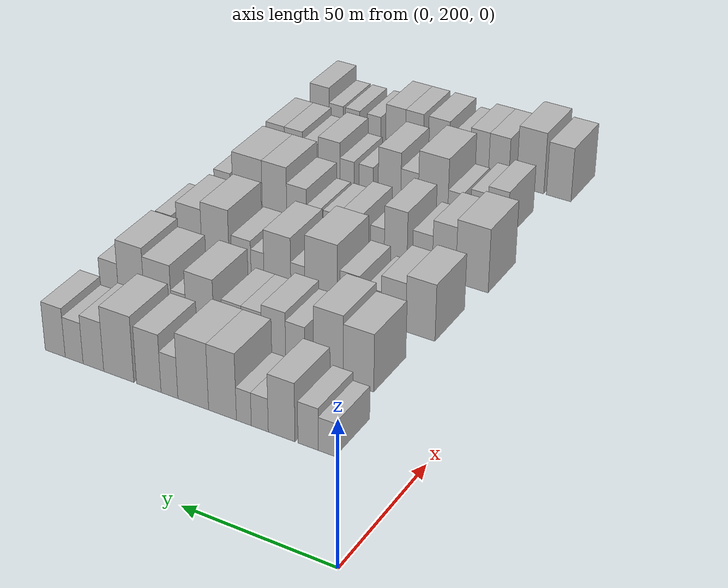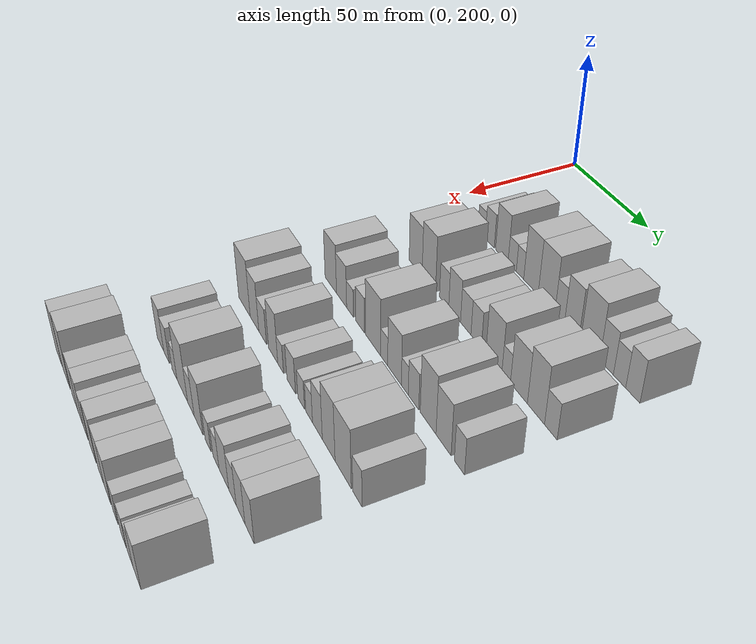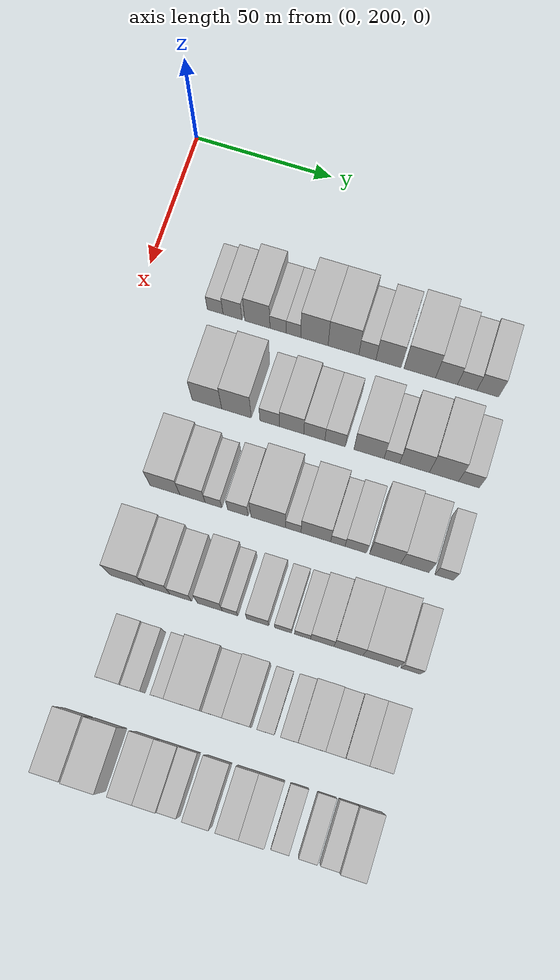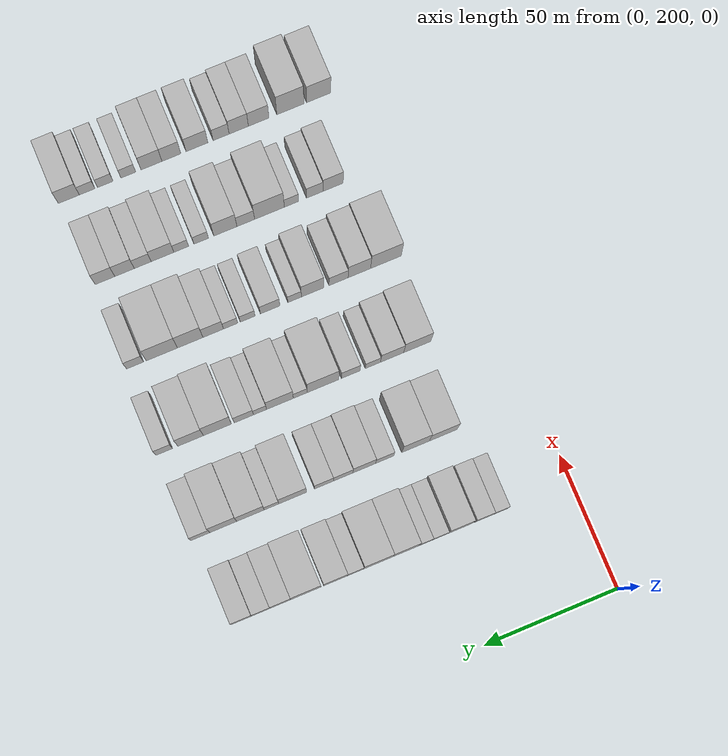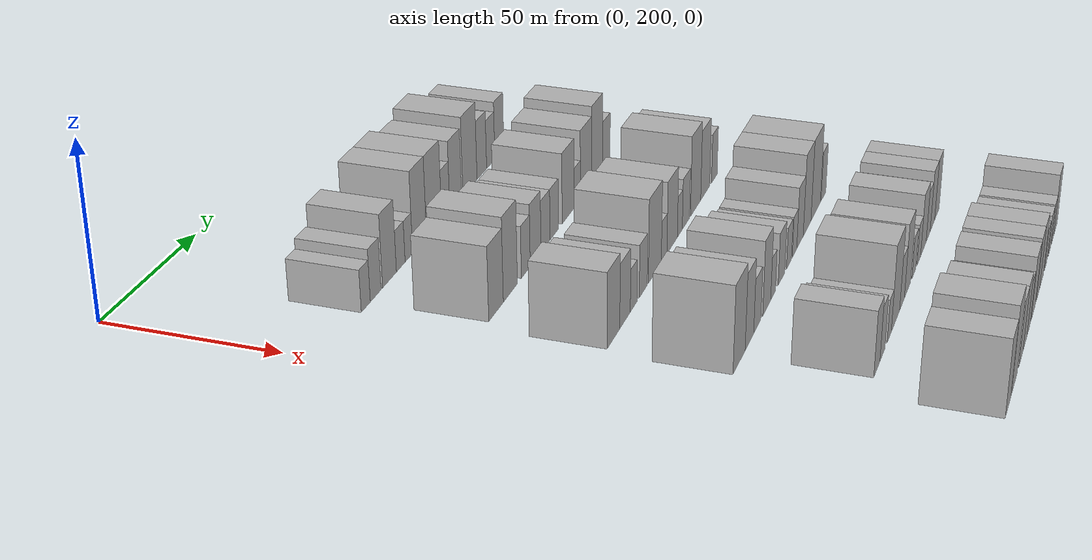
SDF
<sdf version="1.6">
 <world name="default">
  <model name="building_85">
   <static>1</static>
   <pose>50.0000 226.9476 0 0.000000 0.000000 0.000000</pose>
   <link name="link">
    <pose>0 0 6.00 0 0 0</pose>
    <collision name="collision"><geometry><box><size>20.0000 5.6434 12.0000</size></box></geometry></collision>
    <visual name="visual">
     <cast_shadows>0</cast_shadows>
     <geometry><box><size>20.0000 5.6434 12.0000</size></box></geometry>
     <material>
      <script>
       <uri>model://HANNAS_wall/materials/scripts</uri>
       <uri>model://HANNAS_wall/materials/textures</uri>
       <name>vrc/HANNAS_wall</name>
      </script>
     </material>
    </visual>
   </link>
  </model>
  <model name="building_86">
   <static>1</static>
   <pose>50.0000 233.1552 0 0.000000 0.000000 0.000000</pose>
   <link name="link">
    <pose>0 0 7.50 0 0 0</pose>
    <collision name="collision"><geometry><box><size>20.0000 6.7717 15.0000</size></box></geometry></collision>
    <visual name="visual">
     <cast_shadows>0</cast_shadows>
     <geometry><box><size>20.0000 6.7717 15.0000</size></box></geometry>
     <material>
      <script>
       <uri>model://HANNAS_wall/materials/scripts</uri>
       <uri>model://HANNAS_wall/materials/textures</uri>
       <name>vrc/HANNAS_wall</name>
      </script>
     </material>
    </visual>
   </link>
  </model>
  <model name="building_87">
   <static>1</static>
   <pose>50.0000 242.0589 0 0.000000 0.000000 0.000000</pose>
   <link name="link">
    <pose>0 0 10.50 0 0 0</pose>
    <collision name="collision"><geometry><box><size>20.0000 9.0357 21.0000</size></box></geometry></collision>
    <visual name="visual">
     <cast_shadows>0</cast_shadows>
     <geometry><box><size>20.0000 9.0357 21.0000</size></box></geometry>
     <material>
      <script>
       <uri>model://HANNAS_wall/materials/scripts</uri>
       <uri>model://HANNAS_wall/materials/textures</uri>
       <name>vrc/HANNAS_wall</name>
      </script>
     </material>
    </visual>
   </link>
  </model>
  <model name="building_88">
   <static>1</static>
   <pose>50.0000 249.4828 0 0.000000 0.000000 0.000000</pose>
   <link name="link">
    <pose>0 0 6.00 0 0 0</pose>
    <collision name="collision"><geometry><box><size>20.0000 5.8121 12.0000</size></box></geometry></collision>
    <visual name="visual">
     <cast_shadows>0</cast_shadows>
     <geometry><box><size>20.0000 5.8121 12.0000</size></box></geometry>
     <material>
      <script>
       <uri>model://HANNAS_wall/materials/scripts</uri>
       <uri>model://HANNAS_wall/materials/textures</uri>
       <name>vrc/HANNAS_wall</name>
      </script>
     </material>
    </visual>
   </link>
  </model>
  <model name="building_89">
   <static>1</static>
   <pose>50.0000 254.9602 0 0.000000 0.000000 0.000000</pose>
   <link name="link">
    <pose>0 0 6.00 0 0 0</pose>
    <collision name="collision"><geometry><box><size>20.0000 5.1426 12.0000</size></box></geometry></collision>
    <visual name="visual">
     <cast_shadows>0</cast_shadows>
     <geometry><box><size>20.0000 5.1426 12.0000</size></box></geometry>
     <material>
      <script>
       <uri>model://HANNAS_wall/materials/scripts</uri>
       <uri>model://HANNAS_wall/materials/textures</uri>
       <name>vrc/HANNAS_wall</name>
      </script>
     </material>
    </visual>
   </link>
  </model>
  <model name="building_90">
   <static>1</static>
   <pose>50.0000 262.3893 0 0.000000 0.000000 0.000000</pose>
   <link name="link">
    <pose>0 0 12.00 0 0 0</pose>
    <collision name="collision"><geometry><box><size>20.0000 9.7157 24.0000</size></box></geometry></collision>
    <visual name="visual">
     <cast_shadows>0</cast_shadows>
     <geometry><box><size>20.0000 9.7157 24.0000</size></box></geometry>
     <material>
      <script>
       <uri>model://HANNAS_wall/materials/scripts</uri>
       <uri>model://HANNAS_wall/materials/textures</uri>
       <name>vrc/HANNAS_wall</name>
      </script>
     </material>
    </visual>
   </link>
  </model>
  <model name="building_91">
   <static>1</static>
   <pose>50.0000 272.6896 0 0.000000 0.000000 0.000000</pose>
   <link name="link">
    <pose>0 0 12.00 0 0 0</pose>
    <collision name="collision"><geometry><box><size>20.0000 10.8849 24.0000</size></box></geometry></collision>
    <visual name="visual">
     <cast_shadows>0</cast_shadows>
     <geometry><box><size>20.0000 10.8849 24.0000</size></box></geometry>
     <material>
      <script>
       <uri>model://HANNAS_wall/materials/scripts</uri>
       <uri>model://HANNAS_wall/materials/textures</uri>
       <name>vrc/HANNAS_wall</name>
      </script>
     </material>
    </visual>
   </link>
  </model>
  <model name="building_92">
   <static>1</static>
   <pose>50.0000 281.1480 0 0.000000 0.000000 0.000000</pose>
   <link name="link">
    <pose>0 0 7.50 0 0 0</pose>
    <collision name="collision"><geometry><box><size>20.0000 6.0320 15.0000</size></box></geometry></collision>
    <visual name="visual">
     <cast_shadows>0</cast_shadows>
     <geometry><box><size>20.0000 6.0320 15.0000</size></box></geometry>
     <material>
      <script>
       <uri>model://HANNAS_wall/materials/scripts</uri>
       <uri>model://HANNAS_wall/materials/textures</uri>
       <name>vrc/HANNAS_wall</name>
      </script>
     </material>
    </visual>
   </link>
  </model>
  <model name="building_93">
   <static>1</static>
   <pose>50.0000 288.5988 0 0.000000 0.000000 0.000000</pose>
   <link name="link">
    <pose>0 0 10.50 0 0 0</pose>
    <collision name="collision"><geometry><box><size>20.0000 8.8696 21.0000</size></box></geometry></collision>
    <visual name="visual">
     <cast_shadows>0</cast_shadows>
     <geometry><box><size>20.0000 8.8696 21.0000</size></box></geometry>
     <material>
      <script>
       <uri>model://HANNAS_wall/materials/scripts</uri>
       <uri>model://HANNAS_wall/materials/textures</uri>
       <name>vrc/HANNAS_wall</name>
      </script>
     </material>
    </visual>
   </link>
  </model>
  <model name="building_94">
   <static>1</static>
   <pose>50.0000 299.5710 0 0.000000 0.000000 0.000000</pose>
   <link name="link">
    <pose>0 0 12.00 0 0 0</pose>
    <collision name="collision"><geometry><box><size>20.0000 11.0748 24.0000</size></box></geometry></collision>
    <visual name="visual">
     <cast_shadows>0</cast_shadows>
     <geometry><box><size>20.0000 11.0748 24.0000</size></box></geometry>
     <material>
      <script>
       <uri>model://HANNAS_wall/materials/scripts</uri>
       <uri>model://HANNAS_wall/materials/textures</uri>
       <name>vrc/HANNAS_wall</name>
      </script>
     </material>
    </visual>
   </link>
  </model>
  <model name="building_95">
   <static>1</static>
   <pose>50.0000 308.9610 0 0.000000 0.000000 0.000000</pose>
   <link name="link">
    <pose>0 0 9.00 0 0 0</pose>
    <collision name="collision"><geometry><box><size>20.0000 7.7052 18.0000</size></box></geometry></collision>
    <visual name="visual">
     <cast_shadows>0</cast_shadows>
     <geometry><box><size>20.0000 7.7052 18.0000</size></box></geometry>
     <material>
      <script>
       <uri>model://HANNAS_wall/materials/scripts</uri>
       <uri>model://HANNAS_wall/materials/textures</uri>
       <name>vrc/HANNAS_wall</name>
      </script>
     </material>
    </visual>
   </link>
  </model>
  <model name="building_96">
   <static>1</static>
   <pose>50.0000 316.1784 0 0.000000 0.000000 0.000000</pose>
   <link name="link">
    <pose>0 0 7.50 0 0 0</pose>
    <collision name="collision"><geometry><box><size>20.0000 6.7295 15.0000</size></box></geometry></collision>
    <visual name="visual">
     <cast_shadows>0</cast_shadows>
     <geometry><box><size>20.0000 6.7295 15.0000</size></box></geometry>
     <material>
      <script>
       <uri>model://HANNAS_wall/materials/scripts</uri>
       <uri>model://HANNAS_wall/materials/textures</uri>
       <name>vrc/HANNAS_wall</name>
      </script>
     </material>
    </visual>
   </link>
  </model>
  <model name="building_97">
   <static>1</static>
   <pose>50.0000 323.3371 0 0.000000 0.000000 0.000000</pose>
   <link name="link">
    <pose>0 0 9.00 0 0 0</pose>
    <collision name="collision"><geometry><box><size>20.0000 7.5880 18.0000</size></box></geometry></collision>
    <visual name="visual">
     <cast_shadows>0</cast_shadows>
     <geometry><box><size>20.0000 7.5880 18.0000</size></box></geometry>
     <material>
      <script>
       <uri>model://HANNAS_wall/materials/scripts</uri>
       <uri>model://HANNAS_wall/materials/textures</uri>
       <name>vrc/HANNAS_wall</name>
      </script>
     </material>
    </visual>
   </link>
  </model>
  <model name="building_214">
   <static>1</static>
   <pose>82.0000 234.6935 0 0.000000 0.000000 0.000000</pose>
   <link name="link">
    <pose>0 0 10.50 0 0 0</pose>
    <collision name="collision"><geometry><box><size>20.0000 10.4573 21.0000</size></box></geometry></collision>
    <visual name="visual">
     <cast_shadows>0</cast_shadows>
     <geometry><box><size>20.0000 10.4573 21.0000</size></box></geometry>
     <material>
      <script>
       <uri>model://HANNAS_wall/materials/scripts</uri>
       <uri>model://HANNAS_wall/materials/textures</uri>
       <name>vrc/HANNAS_wall</name>
      </script>
     </material>
    </visual>
   </link>
  </model>
  <model name="building_215">
   <static>1</static>
   <pose>82.0000 245.1253 0 0.000000 0.000000 0.000000</pose>
   <link name="link">
    <pose>0 0 12.00 0 0 0</pose>
    <collision name="collision"><geometry><box><size>20.0000 10.4064 24.0000</size></box></geometry></collision>
    <visual name="visual">
     <cast_shadows>0</cast_shadows>
     <geometry><box><size>20.0000 10.4064 24.0000</size></box></geometry>
     <material>
      <script>
       <uri>model://HANNAS_wall/materials/scripts</uri>
       <uri>model://HANNAS_wall/materials/textures</uri>
       <name>vrc/HANNAS_wall</name>
      </script>
     </material>
    </visual>
   </link>
  </model>
  <model name="building_216">
   <static>1</static>
   <pose>82.0000 256.7511 0 0.000000 0.000000 0.000000</pose>
   <link name="link">
    <pose>0 0 7.50 0 0 0</pose>
    <collision name="collision"><geometry><box><size>20.0000 6.8451 15.0000</size></box></geometry></collision>
    <visual name="visual">
     <cast_shadows>0</cast_shadows>
     <geometry><box><size>20.0000 6.8451 15.0000</size></box></geometry>
     <material>
      <script>
       <uri>model://HANNAS_wall/materials/scripts</uri>
       <uri>model://HANNAS_wall/materials/textures</uri>
       <name>vrc/HANNAS_wall</name>
      </script>
     </material>
    </visual>
   </link>
  </model>
  <model name="building_217">
   <static>1</static>
   <pose>82.0000 264.4314 0 0.000000 0.000000 0.000000</pose>
   <link name="link">
    <pose>0 0 9.00 0 0 0</pose>
    <collision name="collision"><geometry><box><size>20.0000 8.5154 18.0000</size></box></geometry></collision>
    <visual name="visual">
     <cast_shadows>0</cast_shadows>
     <geometry><box><size>20.0000 8.5154 18.0000</size></box></geometry>
     <material>
      <script>
       <uri>model://HANNAS_wall/materials/scripts</uri>
       <uri>model://HANNAS_wall/materials/textures</uri>
       <name>vrc/HANNAS_wall</name>
      </script>
     </material>
    </visual>
   </link>
  </model>
  <model name="building_218">
   <static>1</static>
   <pose>82.0000 272.3567 0 0.000000 0.000000 0.000000</pose>
   <link name="link">
    <pose>0 0 7.50 0 0 0</pose>
    <collision name="collision"><geometry><box><size>20.0000 7.3353 15.0000</size></box></geometry></collision>
    <visual name="visual">
     <cast_shadows>0</cast_shadows>
     <geometry><box><size>20.0000 7.3353 15.0000</size></box></geometry>
     <material>
      <script>
       <uri>model://HANNAS_wall/materials/scripts</uri>
       <uri>model://HANNAS_wall/materials/textures</uri>
       <name>vrc/HANNAS_wall</name>
      </script>
     </material>
    </visual>
   </link>
  </model>
  <model name="building_219">
   <static>1</static>
   <pose>82.0000 279.5699 0 0.000000 0.000000 0.000000</pose>
   <link name="link">
    <pose>0 0 7.50 0 0 0</pose>
    <collision name="collision"><geometry><box><size>20.0000 7.0911 15.0000</size></box></geometry></collision>
    <visual name="visual">
     <cast_shadows>0</cast_shadows>
     <geometry><box><size>20.0000 7.0911 15.0000</size></box></geometry>
     <material>
      <script>
       <uri>model://HANNAS_wall/materials/scripts</uri>
       <uri>model://HANNAS_wall/materials/textures</uri>
       <name>vrc/HANNAS_wall</name>
      </script>
     </material>
    </visual>
   </link>
  </model>
  <model name="building_220">
   <static>1</static>
   <pose>82.0000 291.3027 0 0.000000 0.000000 0.000000</pose>
   <link name="link">
    <pose>0 0 10.50 0 0 0</pose>
    <collision name="collision"><geometry><box><size>20.0000 10.3745 21.0000</size></box></geometry></collision>
    <visual name="visual">
     <cast_shadows>0</cast_shadows>
     <geometry><box><size>20.0000 10.3745 21.0000</size></box></geometry>
     <material>
      <script>
       <uri>model://HANNAS_wall/materials/scripts</uri>
       <uri>model://HANNAS_wall/materials/textures</uri>
       <name>vrc/HANNAS_wall</name>
      </script>
     </material>
    </visual>
   </link>
  </model>
  <model name="building_221">
   <static>1</static>
   <pose>82.0000 299.1878 0 0.000000 0.000000 0.000000</pose>
   <link name="link">
    <pose>0 0 6.00 0 0 0</pose>
    <collision name="collision"><geometry><box><size>20.0000 5.3958 12.0000</size></box></geometry></collision>
    <visual name="visual">
     <cast_shadows>0</cast_shadows>
     <geometry><box><size>20.0000 5.3958 12.0000</size></box></geometry>
     <material>
      <script>
       <uri>model://HANNAS_wall/materials/scripts</uri>
       <uri>model://HANNAS_wall/materials/textures</uri>
       <name>vrc/HANNAS_wall</name>
      </script>
     </material>
    </visual>
   </link>
  </model>
  <model name="building_222">
   <static>1</static>
   <pose>82.0000 307.0317 0 0.000000 0.000000 0.000000</pose>
   <link name="link">
    <pose>0 0 10.50 0 0 0</pose>
    <collision name="collision"><geometry><box><size>20.0000 10.2920 21.0000</size></box></geometry></collision>
    <visual name="visual">
     <cast_shadows>0</cast_shadows>
     <geometry><box><size>20.0000 10.2920 21.0000</size></box></geometry>
     <material>
      <script>
       <uri>model://HANNAS_wall/materials/scripts</uri>
       <uri>model://HANNAS_wall/materials/textures</uri>
       <name>vrc/HANNAS_wall</name>
      </script>
     </material>
    </visual>
   </link>
  </model>
  <model name="building_223">
   <static>1</static>
   <pose>82.0000 317.1705 0 0.000000 0.000000 0.000000</pose>
   <link name="link">
    <pose>0 0 12.00 0 0 0</pose>
    <collision name="collision"><geometry><box><size>20.0000 9.9855 24.0000</size></box></geometry></collision>
    <visual name="visual">
     <cast_shadows>0</cast_shadows>
     <geometry><box><size>20.0000 9.9855 24.0000</size></box></geometry>
     <material>
      <script>
       <uri>model://HANNAS_wall/materials/scripts</uri>
       <uri>model://HANNAS_wall/materials/textures</uri>
       <name>vrc/HANNAS_wall</name>
      </script>
     </material>
    </visual>
   </link>
  </model>
  <model name="building_224">
   <static>1</static>
   <pose>82.0000 325.7141 0 0.000000 0.000000 0.000000</pose>
   <link name="link">
    <pose>0 0 7.50 0 0 0</pose>
    <collision name="collision"><geometry><box><size>20.0000 7.1016 15.0000</size></box></geometry></collision>
    <visual name="visual">
     <cast_shadows>0</cast_shadows>
     <geometry><box><size>20.0000 7.1016 15.0000</size></box></geometry>
     <material>
      <script>
       <uri>model://HANNAS_wall/materials/scripts</uri>
       <uri>model://HANNAS_wall/materials/textures</uri>
       <name>vrc/HANNAS_wall</name>
      </script>
     </material>
    </visual>
   </link>
  </model>
  <model name="building_331">
   <static>1</static>
   <pose>114.0000 230.8752 0 0.000000 0.000000 0.000000</pose>
   <link name="link">
    <pose>0 0 10.50 0 0 0</pose>
    <collision name="collision"><geometry><box><size>20.0000 10.3113 21.0000</size></box></geometry></collision>
    <visual name="visual">
     <cast_shadows>0</cast_shadows>
     <geometry><box><size>20.0000 10.3113 21.0000</size></box></geometry>
     <material>
      <script>
       <uri>model://HANNAS_wall/materials/scripts</uri>
       <uri>model://HANNAS_wall/materials/textures</uri>
       <name>vrc/HANNAS_wall</name>
      </script>
     </material>
    </visual>
   </link>
  </model>
  <model name="building_332">
   <static>1</static>
   <pose>114.0000 240.4292 0 0.000000 0.000000 0.000000</pose>
   <link name="link">
    <pose>0 0 9.00 0 0 0</pose>
    <collision name="collision"><geometry><box><size>20.0000 8.7966 18.0000</size></box></geometry></collision>
    <visual name="visual">
     <cast_shadows>0</cast_shadows>
     <geometry><box><size>20.0000 8.7966 18.0000</size></box></geometry>
     <material>
      <script>
       <uri>model://HANNAS_wall/materials/scripts</uri>
       <uri>model://HANNAS_wall/materials/textures</uri>
       <name>vrc/HANNAS_wall</name>
      </script>
     </material>
    </visual>
   </link>
  </model>
  <model name="building_333">
   <static>1</static>
   <pose>114.0000 247.7022 0 0.000000 0.000000 0.000000</pose>
   <link name="link">
    <pose>0 0 6.00 0 0 0</pose>
    <collision name="collision"><geometry><box><size>20.0000 5.7493 12.0000</size></box></geometry></collision>
    <visual name="visual">
     <cast_shadows>0</cast_shadows>
     <geometry><box><size>20.0000 5.7493 12.0000</size></box></geometry>
     <material>
      <script>
       <uri>model://HANNAS_wall/materials/scripts</uri>
       <uri>model://HANNAS_wall/materials/textures</uri>
       <name>vrc/HANNAS_wall</name>
      </script>
     </material>
    </visual>
   </link>
  </model>
  <model name="building_334">
   <static>1</static>
   <pose>114.0000 256.1040 0 0.000000 0.000000 0.000000</pose>
   <link name="link">
    <pose>0 0 7.50 0 0 0</pose>
    <collision name="collision"><geometry><box><size>20.0000 7.0543 15.0000</size></box></geometry></collision>
    <visual name="visual">
     <cast_shadows>0</cast_shadows>
     <geometry><box><size>20.0000 7.0543 15.0000</size></box></geometry>
     <material>
      <script>
       <uri>model://HANNAS_wall/materials/scripts</uri>
       <uri>model://HANNAS_wall/materials/textures</uri>
       <name>vrc/HANNAS_wall</name>
      </script>
     </material>
    </visual>
   </link>
  </model>
  <model name="building_335">
   <static>1</static>
   <pose>114.0000 266.5852 0 0.000000 0.000000 0.000000</pose>
   <link name="link">
    <pose>0 0 12.00 0 0 0</pose>
    <collision name="collision"><geometry><box><size>20.0000 11.9080 24.0000</size></box></geometry></collision>
    <visual name="visual">
     <cast_shadows>0</cast_shadows>
     <geometry><box><size>20.0000 11.9080 24.0000</size></box></geometry>
     <material>
      <script>
       <uri>model://HANNAS_wall/materials/scripts</uri>
       <uri>model://HANNAS_wall/materials/textures</uri>
       <name>vrc/HANNAS_wall</name>
      </script>
     </material>
    </visual>
   </link>
  </model>
  <model name="building_336">
   <static>1</static>
   <pose>114.0000 275.1622 0 0.000000 0.000000 0.000000</pose>
   <link name="link">
    <pose>0 0 6.00 0 0 0</pose>
    <collision name="collision"><geometry><box><size>20.0000 5.2460 12.0000</size></box></geometry></collision>
    <visual name="visual">
     <cast_shadows>0</cast_shadows>
     <geometry><box><size>20.0000 5.2460 12.0000</size></box></geometry>
     <material>
      <script>
       <uri>model://HANNAS_wall/materials/scripts</uri>
       <uri>model://HANNAS_wall/materials/textures</uri>
       <name>vrc/HANNAS_wall</name>
      </script>
     </material>
    </visual>
   </link>
  </model>
  <model name="building_337">
   <static>1</static>
   <pose>114.0000 282.8279 0 0.000000 0.000000 0.000000</pose>
   <link name="link">
    <pose>0 0 10.50 0 0 0</pose>
    <collision name="collision"><geometry><box><size>20.0000 10.0854 21.0000</size></box></geometry></collision>
    <visual name="visual">
     <cast_shadows>0</cast_shadows>
     <geometry><box><size>20.0000 10.0854 21.0000</size></box></geometry>
     <material>
      <script>
       <uri>model://HANNAS_wall/materials/scripts</uri>
       <uri>model://HANNAS_wall/materials/textures</uri>
       <name>vrc/HANNAS_wall</name>
      </script>
     </material>
    </visual>
   </link>
  </model>
  <model name="building_338">
   <static>1</static>
   <pose>114.0000 290.3208 0 0.000000 0.000000 0.000000</pose>
   <link name="link">
    <pose>0 0 6.00 0 0 0</pose>
    <collision name="collision"><geometry><box><size>20.0000 4.9005 12.0000</size></box></geometry></collision>
    <visual name="visual">
     <cast_shadows>0</cast_shadows>
     <geometry><box><size>20.0000 4.9005 12.0000</size></box></geometry>
     <material>
      <script>
       <uri>model://HANNAS_wall/materials/scripts</uri>
       <uri>model://HANNAS_wall/materials/textures</uri>
       <name>vrc/HANNAS_wall</name>
      </script>
     </material>
    </visual>
   </link>
  </model>
  <model name="building_339">
   <static>1</static>
   <pose>114.0000 296.4248 0 0.000000 0.000000 0.000000</pose>
   <link name="link">
    <pose>0 0 7.50 0 0 0</pose>
    <collision name="collision"><geometry><box><size>20.0000 7.3075 15.0000</size></box></geometry></collision>
    <visual name="visual">
     <cast_shadows>0</cast_shadows>
     <geometry><box><size>20.0000 7.3075 15.0000</size></box></geometry>
     <material>
      <script>
       <uri>model://HANNAS_wall/materials/scripts</uri>
       <uri>model://HANNAS_wall/materials/textures</uri>
       <name>vrc/HANNAS_wall</name>
      </script>
     </material>
    </visual>
   </link>
  </model>
  <model name="building_340">
   <static>1</static>
   <pose>114.0000 306.3492 0 0.000000 0.000000 0.000000</pose>
   <link name="link">
    <pose>0 0 12.00 0 0 0</pose>
    <collision name="collision"><geometry><box><size>20.0000 10.5411 24.0000</size></box></geometry></collision>
    <visual name="visual">
     <cast_shadows>0</cast_shadows>
     <geometry><box><size>20.0000 10.5411 24.0000</size></box></geometry>
     <material>
      <script>
       <uri>model://HANNAS_wall/materials/scripts</uri>
       <uri>model://HANNAS_wall/materials/textures</uri>
       <name>vrc/HANNAS_wall</name>
      </script>
     </material>
    </visual>
   </link>
  </model>
  <model name="building_341">
   <static>1</static>
   <pose>114.0000 316.4175 0 0.000000 0.000000 0.000000</pose>
   <link name="link">
    <pose>0 0 10.50 0 0 0</pose>
    <collision name="collision"><geometry><box><size>20.0000 9.5955 21.0000</size></box></geometry></collision>
    <visual name="visual">
     <cast_shadows>0</cast_shadows>
     <geometry><box><size>20.0000 9.5955 21.0000</size></box></geometry>
     <material>
      <script>
       <uri>model://HANNAS_wall/materials/scripts</uri>
       <uri>model://HANNAS_wall/materials/textures</uri>
       <name>vrc/HANNAS_wall</name>
      </script>
     </material>
    </visual>
   </link>
  </model>
  <model name="building_342">
   <static>1</static>
   <pose>114.0000 326.3377 0 0.000000 0.000000 0.000000</pose>
   <link name="link">
    <pose>0 0 7.50 0 0 0</pose>
    <collision name="collision"><geometry><box><size>20.0000 6.2450 15.0000</size></box></geometry></collision>
    <visual name="visual">
     <cast_shadows>0</cast_shadows>
     <geometry><box><size>20.0000 6.2450 15.0000</size></box></geometry>
     <material>
      <script>
       <uri>model://HANNAS_wall/materials/scripts</uri>
       <uri>model://HANNAS_wall/materials/textures</uri>
       <name>vrc/HANNAS_wall</name>
      </script>
     </material>
    </visual>
   </link>
  </model>
  <model name="building_454">
   <static>1</static>
   <pose>146.0000 229.2542 0 0.000000 0.000000 0.000000</pose>
   <link name="link">
    <pose>0 0 12.00 0 0 0</pose>
    <collision name="collision"><geometry><box><size>20.0000 11.7262 24.0000</size></box></geometry></collision>
    <visual name="visual">
     <cast_shadows>0</cast_shadows>
     <geometry><box><size>20.0000 11.7262 24.0000</size></box></geometry>
     <material>
      <script>
       <uri>model://HANNAS_wall/materials/scripts</uri>
       <uri>model://HANNAS_wall/materials/textures</uri>
       <name>vrc/HANNAS_wall</name>
      </script>
     </material>
    </visual>
   </link>
  </model>
  <model name="building_455">
   <static>1</static>
   <pose>146.0000 239.3950 0 0.000000 0.000000 0.000000</pose>
   <link name="link">
    <pose>0 0 10.50 0 0 0</pose>
    <collision name="collision"><geometry><box><size>20.0000 8.5555 21.0000</size></box></geometry></collision>
    <visual name="visual">
     <cast_shadows>0</cast_shadows>
     <geometry><box><size>20.0000 8.5555 21.0000</size></box></geometry>
     <material>
      <script>
       <uri>model://HANNAS_wall/materials/scripts</uri>
       <uri>model://HANNAS_wall/materials/textures</uri>
       <name>vrc/HANNAS_wall</name>
      </script>
     </material>
    </visual>
   </link>
  </model>
  <model name="building_456">
   <static>1</static>
   <pose>146.0000 247.3204 0 0.000000 0.000000 0.000000</pose>
   <link name="link">
    <pose>0 0 7.50 0 0 0</pose>
    <collision name="collision"><geometry><box><size>20.0000 7.2953 15.0000</size></box></geometry></collision>
    <visual name="visual">
     <cast_shadows>0</cast_shadows>
     <geometry><box><size>20.0000 7.2953 15.0000</size></box></geometry>
     <material>
      <script>
       <uri>model://HANNAS_wall/materials/scripts</uri>
       <uri>model://HANNAS_wall/materials/textures</uri>
       <name>vrc/HANNAS_wall</name>
      </script>
     </material>
    </visual>
   </link>
  </model>
  <model name="building_457">
   <static>1</static>
   <pose>146.0000 257.2040 0 0.000000 0.000000 0.000000</pose>
   <link name="link">
    <pose>0 0 10.50 0 0 0</pose>
    <collision name="collision"><geometry><box><size>20.0000 8.4719 21.0000</size></box></geometry></collision>
    <visual name="visual">
     <cast_shadows>0</cast_shadows>
     <geometry><box><size>20.0000 8.4719 21.0000</size></box></geometry>
     <material>
      <script>
       <uri>model://HANNAS_wall/materials/scripts</uri>
       <uri>model://HANNAS_wall/materials/textures</uri>
       <name>vrc/HANNAS_wall</name>
      </script>
     </material>
    </visual>
   </link>
  </model>
  <model name="building_458">
   <static>1</static>
   <pose>146.0000 264.0208 0 0.000000 0.000000 0.000000</pose>
   <link name="link">
    <pose>0 0 6.00 0 0 0</pose>
    <collision name="collision"><geometry><box><size>20.0000 5.1619 12.0000</size></box></geometry></collision>
    <visual name="visual">
     <cast_shadows>0</cast_shadows>
     <geometry><box><size>20.0000 5.1619 12.0000</size></box></geometry>
     <material>
      <script>
       <uri>model://HANNAS_wall/materials/scripts</uri>
       <uri>model://HANNAS_wall/materials/textures</uri>
       <name>vrc/HANNAS_wall</name>
      </script>
     </material>
    </visual>
   </link>
  </model>
  <model name="building_459">
   <static>1</static>
   <pose>146.0000 273.3084 0 0.000000 0.000000 0.000000</pose>
   <link name="link">
    <pose>0 0 7.50 0 0 0</pose>
    <collision name="collision"><geometry><box><size>20.0000 7.4133 15.0000</size></box></geometry></collision>
    <visual name="visual">
     <cast_shadows>0</cast_shadows>
     <geometry><box><size>20.0000 7.4133 15.0000</size></box></geometry>
     <material>
      <script>
       <uri>model://HANNAS_wall/materials/scripts</uri>
       <uri>model://HANNAS_wall/materials/textures</uri>
       <name>vrc/HANNAS_wall</name>
      </script>
     </material>
    </visual>
   </link>
  </model>
  <model name="building_460">
   <static>1</static>
   <pose>146.0000 281.8159 0 0.000000 0.000000 0.000000</pose>
   <link name="link">
    <pose>0 0 6.00 0 0 0</pose>
    <collision name="collision"><geometry><box><size>20.0000 5.6015 12.0000</size></box></geometry></collision>
    <visual name="visual">
     <cast_shadows>0</cast_shadows>
     <geometry><box><size>20.0000 5.6015 12.0000</size></box></geometry>
     <material>
      <script>
       <uri>model://HANNAS_wall/materials/scripts</uri>
       <uri>model://HANNAS_wall/materials/textures</uri>
       <name>vrc/HANNAS_wall</name>
      </script>
     </material>
    </visual>
   </link>
  </model>
  <model name="building_461">
   <static>1</static>
   <pose>146.0000 288.3228 0 0.000000 0.000000 0.000000</pose>
   <link name="link">
    <pose>0 0 6.00 0 0 0</pose>
    <collision name="collision"><geometry><box><size>20.0000 5.4123 12.0000</size></box></geometry></collision>
    <visual name="visual">
     <cast_shadows>0</cast_shadows>
     <geometry><box><size>20.0000 5.4123 12.0000</size></box></geometry>
     <material>
      <script>
       <uri>model://HANNAS_wall/materials/scripts</uri>
       <uri>model://HANNAS_wall/materials/textures</uri>
       <name>vrc/HANNAS_wall</name>
      </script>
     </material>
    </visual>
   </link>
  </model>
  <model name="building_462">
   <static>1</static>
   <pose>146.0000 294.9024 0 0.000000 0.000000 0.000000</pose>
   <link name="link">
    <pose>0 0 9.00 0 0 0</pose>
    <collision name="collision"><geometry><box><size>20.0000 7.7469 18.0000</size></box></geometry></collision>
    <visual name="visual">
     <cast_shadows>0</cast_shadows>
     <geometry><box><size>20.0000 7.7469 18.0000</size></box></geometry>
     <material>
      <script>
       <uri>model://HANNAS_wall/materials/scripts</uri>
       <uri>model://HANNAS_wall/materials/textures</uri>
       <name>vrc/HANNAS_wall</name>
      </script>
     </material>
    </visual>
   </link>
  </model>
  <model name="building_463">
   <static>1</static>
   <pose>146.0000 303.5892 0 0.000000 0.000000 0.000000</pose>
   <link name="link">
    <pose>0 0 12.00 0 0 0</pose>
    <collision name="collision"><geometry><box><size>20.0000 9.6268 24.0000</size></box></geometry></collision>
    <visual name="visual">
     <cast_shadows>0</cast_shadows>
     <geometry><box><size>20.0000 9.6268 24.0000</size></box></geometry>
     <material>
      <script>
       <uri>model://HANNAS_wall/materials/scripts</uri>
       <uri>model://HANNAS_wall/materials/textures</uri>
       <name>vrc/HANNAS_wall</name>
      </script>
     </material>
    </visual>
   </link>
  </model>
  <model name="building_464">
   <static>1</static>
   <pose>146.0000 314.2724 0 0.000000 0.000000 0.000000</pose>
   <link name="link">
    <pose>0 0 12.00 0 0 0</pose>
    <collision name="collision"><geometry><box><size>20.0000 11.7394 24.0000</size></box></geometry></collision>
    <visual name="visual">
     <cast_shadows>0</cast_shadows>
     <geometry><box><size>20.0000 11.7394 24.0000</size></box></geometry>
     <material>
      <script>
       <uri>model://HANNAS_wall/materials/scripts</uri>
       <uri>model://HANNAS_wall/materials/textures</uri>
       <name>vrc/HANNAS_wall</name>
      </script>
     </material>
    </visual>
   </link>
  </model>
  <model name="building_465">
   <static>1</static>
   <pose>146.0000 324.3606 0 0.000000 0.000000 0.000000</pose>
   <link name="link">
    <pose>0 0 7.50 0 0 0</pose>
    <collision name="collision"><geometry><box><size>20.0000 6.4370 15.0000</size></box></geometry></collision>
    <visual name="visual">
     <cast_shadows>0</cast_shadows>
     <geometry><box><size>20.0000 6.4370 15.0000</size></box></geometry>
     <material>
      <script>
       <uri>model://HANNAS_wall/materials/scripts</uri>
       <uri>model://HANNAS_wall/materials/textures</uri>
       <name>vrc/HANNAS_wall</name>
      </script>
     </material>
    </visual>
   </link>
  </model>
  <model name="building_568">
   <static>1</static>
   <pose>178.0000 236.0254 0 0.000000 0.000000 0.000000</pose>
   <link name="link">
    <pose>0 0 9.00 0 0 0</pose>
    <collision name="collision"><geometry><box><size>20.0000 7.7027 18.0000</size></box></geometry></collision>
    <visual name="visual">
     <cast_shadows>0</cast_shadows>
     <geometry><box><size>20.0000 7.7027 18.0000</size></box></geometry>
     <material>
      <script>
       <uri>model://HANNAS_wall/materials/scripts</uri>
       <uri>model://HANNAS_wall/materials/textures</uri>
       <name>vrc/HANNAS_wall</name>
      </script>
     </material>
    </visual>
   </link>
  </model>
  <model name="building_569">
   <static>1</static>
   <pose>178.0000 243.0436 0 0.000000 0.000000 0.000000</pose>
   <link name="link">
    <pose>0 0 7.50 0 0 0</pose>
    <collision name="collision"><geometry><box><size>20.0000 6.3338 15.0000</size></box></geometry></collision>
    <visual name="visual">
     <cast_shadows>0</cast_shadows>
     <geometry><box><size>20.0000 6.3338 15.0000</size></box></geometry>
     <material>
      <script>
       <uri>model://HANNAS_wall/materials/scripts</uri>
       <uri>model://HANNAS_wall/materials/textures</uri>
       <name>vrc/HANNAS_wall</name>
      </script>
     </material>
    </visual>
   </link>
  </model>
  <model name="building_570">
   <static>1</static>
   <pose>178.0000 251.9508 0 0.000000 0.000000 0.000000</pose>
   <link name="link">
    <pose>0 0 6.00 0 0 0</pose>
    <collision name="collision"><geometry><box><size>20.0000 5.4805 12.0000</size></box></geometry></collision>
    <visual name="visual">
     <cast_shadows>0</cast_shadows>
     <geometry><box><size>20.0000 5.4805 12.0000</size></box></geometry>
     <material>
      <script>
       <uri>model://HANNAS_wall/materials/scripts</uri>
       <uri>model://HANNAS_wall/materials/textures</uri>
       <name>vrc/HANNAS_wall</name>
      </script>
     </material>
    </visual>
   </link>
  </model>
  <model name="building_571">
   <static>1</static>
   <pose>178.0000 260.3641 0 0.000000 0.000000 0.000000</pose>
   <link name="link">
    <pose>0 0 12.00 0 0 0</pose>
    <collision name="collision"><geometry><box><size>20.0000 11.3462 24.0000</size></box></geometry></collision>
    <visual name="visual">
     <cast_shadows>0</cast_shadows>
     <geometry><box><size>20.0000 11.3462 24.0000</size></box></geometry>
     <material>
      <script>
       <uri>model://HANNAS_wall/materials/scripts</uri>
       <uri>model://HANNAS_wall/materials/textures</uri>
       <name>vrc/HANNAS_wall</name>
      </script>
     </material>
    </visual>
   </link>
  </model>
  <model name="building_572">
   <static>1</static>
   <pose>178.0000 269.4141 0 0.000000 0.000000 0.000000</pose>
   <link name="link">
    <pose>0 0 7.50 0 0 0</pose>
    <collision name="collision"><geometry><box><size>20.0000 6.7539 15.0000</size></box></geometry></collision>
    <visual name="visual">
     <cast_shadows>0</cast_shadows>
     <geometry><box><size>20.0000 6.7539 15.0000</size></box></geometry>
     <material>
      <script>
       <uri>model://HANNAS_wall/materials/scripts</uri>
       <uri>model://HANNAS_wall/materials/textures</uri>
       <name>vrc/HANNAS_wall</name>
      </script>
     </material>
    </visual>
   </link>
  </model>
  <model name="building_573">
   <static>1</static>
   <pose>178.0000 277.1987 0 0.000000 0.000000 0.000000</pose>
   <link name="link">
    <pose>0 0 10.50 0 0 0</pose>
    <collision name="collision"><geometry><box><size>20.0000 8.8153 21.0000</size></box></geometry></collision>
    <visual name="visual">
     <cast_shadows>0</cast_shadows>
     <geometry><box><size>20.0000 8.8153 21.0000</size></box></geometry>
     <material>
      <script>
       <uri>model://HANNAS_wall/materials/scripts</uri>
       <uri>model://HANNAS_wall/materials/textures</uri>
       <name>vrc/HANNAS_wall</name>
      </script>
     </material>
    </visual>
   </link>
  </model>
  <model name="building_574">
   <static>1</static>
   <pose>178.0000 286.3890 0 0.000000 0.000000 0.000000</pose>
   <link name="link">
    <pose>0 0 6.00 0 0 0</pose>
    <collision name="collision"><geometry><box><size>20.0000 5.5651 12.0000</size></box></geometry></collision>
    <visual name="visual">
     <cast_shadows>0</cast_shadows>
     <geometry><box><size>20.0000 5.5651 12.0000</size></box></geometry>
     <material>
      <script>
       <uri>model://HANNAS_wall/materials/scripts</uri>
       <uri>model://HANNAS_wall/materials/textures</uri>
       <name>vrc/HANNAS_wall</name>
      </script>
     </material>
    </visual>
   </link>
  </model>
  <model name="building_575">
   <static>1</static>
   <pose>178.0000 293.9854 0 0.000000 0.000000 0.000000</pose>
   <link name="link">
    <pose>0 0 6.00 0 0 0</pose>
    <collision name="collision"><geometry><box><size>20.0000 5.6277 12.0000</size></box></geometry></collision>
    <visual name="visual">
     <cast_shadows>0</cast_shadows>
     <geometry><box><size>20.0000 5.6277 12.0000</size></box></geometry>
     <material>
      <script>
       <uri>model://HANNAS_wall/materials/scripts</uri>
       <uri>model://HANNAS_wall/materials/textures</uri>
       <name>vrc/HANNAS_wall</name>
      </script>
     </material>
    </visual>
   </link>
  </model>
  <model name="building_576">
   <static>1</static>
   <pose>178.0000 301.1018 0 0.000000 0.000000 0.000000</pose>
   <link name="link">
    <pose>0 0 9.00 0 0 0</pose>
    <collision name="collision"><geometry><box><size>20.0000 8.6052 18.0000</size></box></geometry></collision>
    <visual name="visual">
     <cast_shadows>0</cast_shadows>
     <geometry><box><size>20.0000 8.6052 18.0000</size></box></geometry>
     <material>
      <script>
       <uri>model://HANNAS_wall/materials/scripts</uri>
       <uri>model://HANNAS_wall/materials/textures</uri>
       <name>vrc/HANNAS_wall</name>
      </script>
     </material>
    </visual>
   </link>
  </model>
  <model name="building_577">
   <static>1</static>
   <pose>178.0000 308.6106 0 0.000000 0.000000 0.000000</pose>
   <link name="link">
    <pose>0 0 7.50 0 0 0</pose>
    <collision name="collision"><geometry><box><size>20.0000 6.4124 15.0000</size></box></geometry></collision>
    <visual name="visual">
     <cast_shadows>0</cast_shadows>
     <geometry><box><size>20.0000 6.4124 15.0000</size></box></geometry>
     <material>
      <script>
       <uri>model://HANNAS_wall/materials/scripts</uri>
       <uri>model://HANNAS_wall/materials/textures</uri>
       <name>vrc/HANNAS_wall</name>
      </script>
     </material>
    </visual>
   </link>
  </model>
  <model name="building_578">
   <static>1</static>
   <pose>178.0000 315.5004 0 0.000000 0.000000 0.000000</pose>
   <link name="link">
    <pose>0 0 9.00 0 0 0</pose>
    <collision name="collision"><geometry><box><size>20.0000 7.3673 18.0000</size></box></geometry></collision>
    <visual name="visual">
     <cast_shadows>0</cast_shadows>
     <geometry><box><size>20.0000 7.3673 18.0000</size></box></geometry>
     <material>
      <script>
       <uri>model://HANNAS_wall/materials/scripts</uri>
       <uri>model://HANNAS_wall/materials/textures</uri>
       <name>vrc/HANNAS_wall</name>
      </script>
     </material>
    </visual>
   </link>
  </model>
  <model name="building_579">
   <static>1</static>
   <pose>178.0000 322.8974 0 0.000000 0.000000 0.000000</pose>
   <link name="link">
    <pose>0 0 9.00 0 0 0</pose>
    <collision name="collision"><geometry><box><size>20.0000 7.4268 18.0000</size></box></geometry></collision>
    <visual name="visual">
     <cast_shadows>0</cast_shadows>
     <geometry><box><size>20.0000 7.4268 18.0000</size></box></geometry>
     <material>
      <script>
       <uri>model://HANNAS_wall/materials/scripts</uri>
       <uri>model://HANNAS_wall/materials/textures</uri>
       <name>vrc/HANNAS_wall</name>
      </script>
     </material>
    </visual>
   </link>
  </model>
  <model name="building_681">
   <static>1</static>
   <pose>210.0000 228.2100 0 0.000000 0.000000 0.000000</pose>
   <link name="link">
    <pose>0 0 10.50 0 0 0</pose>
    <collision name="collision"><geometry><box><size>20.0000 9.3034 21.0000</size></box></geometry></collision>
    <visual name="visual">
     <cast_shadows>0</cast_shadows>
     <geometry><box><size>20.0000 9.3034 21.0000</size></box></geometry>
     <material>
      <script>
       <uri>model://HANNAS_wall/materials/scripts</uri>
       <uri>model://HANNAS_wall/materials/textures</uri>
       <name>vrc/HANNAS_wall</name>
      </script>
     </material>
    </visual>
   </link>
  </model>
  <model name="building_682">
   <static>1</static>
   <pose>210.0000 239.1022 0 0.000000 0.000000 0.000000</pose>
   <link name="link">
    <pose>0 0 12.00 0 0 0</pose>
    <collision name="collision"><geometry><box><size>20.0000 10.4809 24.0000</size></box></geometry></collision>
    <visual name="visual">
     <cast_shadows>0</cast_shadows>
     <geometry><box><size>20.0000 10.4809 24.0000</size></box></geometry>
     <material>
      <script>
       <uri>model://HANNAS_wall/materials/scripts</uri>
       <uri>model://HANNAS_wall/materials/textures</uri>
       <name>vrc/HANNAS_wall</name>
      </script>
     </material>
    </visual>
   </link>
  </model>
  <model name="building_683">
   <static>1</static>
   <pose>210.0000 251.2932 0 0.000000 0.000000 0.000000</pose>
   <link name="link">
    <pose>0 0 9.00 0 0 0</pose>
    <collision name="collision"><geometry><box><size>20.0000 7.9011 18.0000</size></box></geometry></collision>
    <visual name="visual">
     <cast_shadows>0</cast_shadows>
     <geometry><box><size>20.0000 7.9011 18.0000</size></box></geometry>
     <material>
      <script>
       <uri>model://HANNAS_wall/materials/scripts</uri>
       <uri>model://HANNAS_wall/materials/textures</uri>
       <name>vrc/HANNAS_wall</name>
      </script>
     </material>
    </visual>
   </link>
  </model>
  <model name="building_684">
   <static>1</static>
   <pose>210.0000 258.9366 0 0.000000 0.000000 0.000000</pose>
   <link name="link">
    <pose>0 0 9.00 0 0 0</pose>
    <collision name="collision"><geometry><box><size>20.0000 7.3859 18.0000</size></box></geometry></collision>
    <visual name="visual">
     <cast_shadows>0</cast_shadows>
     <geometry><box><size>20.0000 7.3859 18.0000</size></box></geometry>
     <material>
      <script>
       <uri>model://HANNAS_wall/materials/scripts</uri>
       <uri>model://HANNAS_wall/materials/textures</uri>
       <name>vrc/HANNAS_wall</name>
      </script>
     </material>
    </visual>
   </link>
  </model>
  <model name="building_685">
   <static>1</static>
   <pose>210.0000 265.7095 0 0.000000 0.000000 0.000000</pose>
   <link name="link">
    <pose>0 0 7.50 0 0 0</pose>
    <collision name="collision"><geometry><box><size>20.0000 6.1597 15.0000</size></box></geometry></collision>
    <visual name="visual">
     <cast_shadows>0</cast_shadows>
     <geometry><box><size>20.0000 6.1597 15.0000</size></box></geometry>
     <material>
      <script>
       <uri>model://HANNAS_wall/materials/scripts</uri>
       <uri>model://HANNAS_wall/materials/textures</uri>
       <name>vrc/HANNAS_wall</name>
      </script>
     </material>
    </visual>
   </link>
  </model>
  <model name="building_686">
   <static>1</static>
   <pose>210.0000 274.9791 0 0.000000 0.000000 0.000000</pose>
   <link name="link">
    <pose>0 0 9.00 0 0 0</pose>
    <collision name="collision"><geometry><box><size>20.0000 8.3796 18.0000</size></box></geometry></collision>
    <visual name="visual">
     <cast_shadows>0</cast_shadows>
     <geometry><box><size>20.0000 8.3796 18.0000</size></box></geometry>
     <material>
      <script>
       <uri>model://HANNAS_wall/materials/scripts</uri>
       <uri>model://HANNAS_wall/materials/textures</uri>
       <name>vrc/HANNAS_wall</name>
      </script>
     </material>
    </visual>
   </link>
  </model>
  <model name="building_687">
   <static>1</static>
   <pose>210.0000 284.7714 0 0.000000 0.000000 0.000000</pose>
   <link name="link">
    <pose>0 0 9.00 0 0 0</pose>
    <collision name="collision"><geometry><box><size>20.0000 7.2051 18.0000</size></box></geometry></collision>
    <visual name="visual">
     <cast_shadows>0</cast_shadows>
     <geometry><box><size>20.0000 7.2051 18.0000</size></box></geometry>
     <material>
      <script>
       <uri>model://HANNAS_wall/materials/scripts</uri>
       <uri>model://HANNAS_wall/materials/textures</uri>
       <name>vrc/HANNAS_wall</name>
      </script>
     </material>
    </visual>
   </link>
  </model>
  <model name="building_688">
   <static>1</static>
   <pose>210.0000 292.3769 0 0.000000 0.000000 0.000000</pose>
   <link name="link">
    <pose>0 0 9.00 0 0 0</pose>
    <collision name="collision"><geometry><box><size>20.0000 8.0059 18.0000</size></box></geometry></collision>
    <visual name="visual">
     <cast_shadows>0</cast_shadows>
     <geometry><box><size>20.0000 8.0059 18.0000</size></box></geometry>
     <material>
      <script>
       <uri>model://HANNAS_wall/materials/scripts</uri>
       <uri>model://HANNAS_wall/materials/textures</uri>
       <name>vrc/HANNAS_wall</name>
      </script>
     </material>
    </visual>
   </link>
  </model>
  <model name="building_689">
   <static>1</static>
   <pose>210.0000 301.2142 0 0.000000 0.000000 0.000000</pose>
   <link name="link">
    <pose>0 0 6.00 0 0 0</pose>
    <collision name="collision"><geometry><box><size>20.0000 5.6688 12.0000</size></box></geometry></collision>
    <visual name="visual">
     <cast_shadows>0</cast_shadows>
     <geometry><box><size>20.0000 5.6688 12.0000</size></box></geometry>
     <material>
      <script>
       <uri>model://HANNAS_wall/materials/scripts</uri>
       <uri>model://HANNAS_wall/materials/textures</uri>
       <name>vrc/HANNAS_wall</name>
      </script>
     </material>
    </visual>
   </link>
  </model>
  <model name="building_690">
   <static>1</static>
   <pose>210.0000 310.0015 0 0.000000 0.000000 0.000000</pose>
   <link name="link">
    <pose>0 0 6.00 0 0 0</pose>
    <collision name="collision"><geometry><box><size>20.0000 5.9057 12.0000</size></box></geometry></collision>
    <visual name="visual">
     <cast_shadows>0</cast_shadows>
     <geometry><box><size>20.0000 5.9057 12.0000</size></box></geometry>
     <material>
      <script>
       <uri>model://HANNAS_wall/materials/scripts</uri>
       <uri>model://HANNAS_wall/materials/textures</uri>
       <name>vrc/HANNAS_wall</name>
      </script>
     </material>
    </visual>
   </link>
  </model>
  <model name="building_691">
   <static>1</static>
   <pose>210.0000 316.9114 0 0.000000 0.000000 0.000000</pose>
   <link name="link">
    <pose>0 0 6.00 0 0 0</pose>
    <collision name="collision"><geometry><box><size>20.0000 5.9140 12.0000</size></box></geometry></collision>
    <visual name="visual">
     <cast_shadows>0</cast_shadows>
     <geometry><box><size>20.0000 5.9140 12.0000</size></box></geometry>
     <material>
      <script>
       <uri>model://HANNAS_wall/materials/scripts</uri>
       <uri>model://HANNAS_wall/materials/textures</uri>
       <name>vrc/HANNAS_wall</name>
      </script>
     </material>
    </visual>
   </link>
  </model>
  <model name="building_692">
   <static>1</static>
   <pose>210.0000 323.8701 0 0.000000 0.000000 0.000000</pose>
   <link name="link">
    <pose>0 0 9.00 0 0 0</pose>
    <collision name="collision"><geometry><box><size>20.0000 8.0034 18.0000</size></box></geometry></collision>
    <visual name="visual">
     <cast_shadows>0</cast_shadows>
     <geometry><box><size>20.0000 8.0034 18.0000</size></box></geometry>
     <material>
      <script>
       <uri>model://HANNAS_wall/materials/scripts</uri>
       <uri>model://HANNAS_wall/materials/textures</uri>
       <name>vrc/HANNAS_wall</name>
      </script>
     </material>
    </visual>
   </link>
  </model>
 </world>
</sdf>
